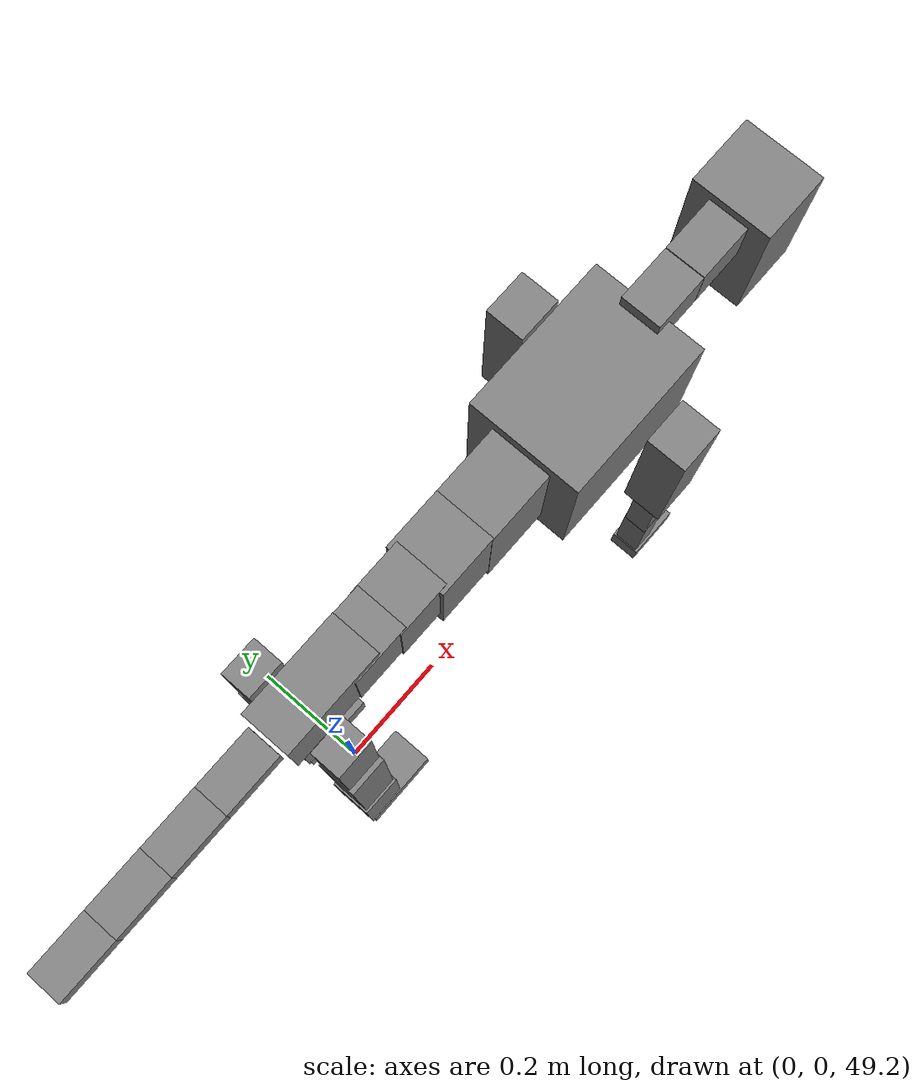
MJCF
<mujoco model="dog">

    <default>
        <joint armature="0.02" stiffness="1" damping="0.2" limited="true"/>
        <geom condim="3" friction="1 0.05 0.05" margin="0.01"/>
        <motor ctrllimited="true" ctrlrange="-1.0 1.0" forcelimited="true" gear="50"/>
    </default>

    <compiler inertiafromgeom="true" angle="radian"/>

    <option timestep="0.016" iterations="50" tolerance="1e-10" solver="Newton" jacobian="dense" cone="pyramidal"/>

    <size nconmax="20000" njmax="60000" nstack="5000000"/>
    <visual>
        <map force="0.1" zfar="30"/>
        <rgba haze="0.15 0.25 0.35 1"/>
        <quality shadowsize="2048"/>
        <global offwidth="800" offheight="800"/>
    </visual>

    <asset>
        <texture type="skybox" builtin="gradient" rgb1="0.3 0.5 0.7" rgb2="0 0 0" width="512" height="512"/>
        <texture name="texplane" type="2d" builtin="checker" rgb1=".2 .3 .4" rgb2=".1 0.15 0.2" width="512" height="512"
                 mark="cross" markrgb=".8 .8 .8"/>
        <texture name="texgeom" type="cube" builtin="flat" mark="cross" width="127" height="1278" rgb1="0.8 0.6 0.4"
                 rgb2="0.8 0.6 0.4" markrgb="1 1 1" random="0.01"/>

        <material name="matplane" reflectance="0.3" texture="texplane" texrepeat="1 1" texuniform="true"/>
        <material name="matgeom" texture="texgeom" texuniform="true" rgba="0.8 0.6 .4 1"/>
    </asset>

    <worldbody>
        <geom name="floor" pos="0 0 0" size="0 0 .25" type="plane" material="matplane" condim="3"/>

        <light directional="false" diffuse=".2 .2 .2" specular="0 0 0" pos="0 0 5" dir="0 0 -1" castshadow="false"/>
        <light mode="targetbodycom" target="torso" directional="false" diffuse=".8 .8 .8" specular="0.3 0.3 0.3"
               pos="0 0 4.0" dir="0 0 -1"/>

        <body name="root" pos="0 0 50">
            <freejoint name="root_1"/>
            <geom type="box" pos="0 0 -0.02" size="0.0774  0.0358  0.063" density="2030"/>

            <body name="spine1" pos="0.054 0 0">
                <joint name="spine1_y" axis="0 1 0" range="0 0.7" limited="true"/>
                <geom type="box" pos="0.02375 0 -0.03" size="0.04375  0.0375  0.05985" density="2030"/>

                <body name="spine2" pos="0.0612 0 0">
                    <joint name="spine2_y" axis="0 1 0" range="-0.15 0.15" limited="true"/>
                    <geom type="box" pos="0.03555  0  -0.04" size="0.04055  0.039  0.06615" density="2030"/>

                    <body name="spine3" pos="0.0730 0 0">
                        <joint name="spine3_y" axis="0 1 0" range="-0.15 0.15" limited="true"/>
                        <geom type="box" pos="0.03555  0  -0.057" size="0.04555  0.0445  0.081" density="2030"/>

                        <body name="spine4" pos="0.0780 0 0">
                            <joint name="spine4_y" axis="0 1 0" range="-0.15 0.15" limited="true"/>
                            <geom type="box" pos="0.05265  0  -0.07" size="0.05265  0.045  0.09135" density="2030"/>

                            <body name="torso" pos="0.1082 0 0">
                                <joint name="torso_y" axis="0 1 0" range="-0.15 0.15" limited="true"/>
                                <geom type="box" pos="0.11925  0  -0.085" size="0.11925  0.085  0.11745"
                                      density="2030"/>

                                <body name="neck1" pos="0.2160  0   0.0180">
                                    <joint name="neck1_y" axis="0 1 0" range="-1.2  -1" limited="true"/>
                                    <geom type="box" pos="0.0423  0  0" size="0.0423  0.03  0.036" density="2325"/>

                                    <body name="neck2" pos="0.0853  0  0">
                                        <joint name="neck2_y" axis="0 1 0" range="0.1  0" limited="true"/>
                                        <geom type="box" pos="0.0423  0  0" size="0.0423  0.03  0.036" density="2325"/>

                                        <body name="head" pos="0.0853  0  0">
                                            <joint name="head_y" axis="0 1 0" range="-0.3  -0.2" limited="true"/>
                                            <geom type="box" pos="0.0531  0  -0.055" size="0.0531  0.06  0.1044"
                                                  density="4030"/>

                                        </body>
                                    </body>
                                </body>

                                <body name="front_shoulder" pos="0.156  0   -0.0480">
                                    <joint name="front_shoulder_y" axis="0 1 0" range="-1 1.5" limited="true"/>
                                    <geom type="box" pos="0 0.13 -0.0915" size="0.0349  0.0298  0.1181" density="1158"/>
                                    <geom type="box" pos="0 -0.13 -0.0915" size="0.0349  0.0298  0.1181"
                                          density="1158"/>

                                    <body name="front_elbow" pos="0  0  -0.1829">
                                        <joint name="front_elbow_y" axis="0 1 0" range="-2 0" limited="true"/>
                                        <geom type="box" pos="0 0.13 -0.0913" size="0.0177  0.0181  0.0913"
                                              density="1081"/>
                                        <geom type="box" pos="0 -0.13 -0.0913" size="0.0177  0.0181  0.0913"
                                              density="1081"/>

                                        <body name="front_wrist" pos="0  0  -0.1826">
                                            <joint name="front_wrist_y" axis="0 1 0" range="-0.2 0" limited="true"/>
                                            <geom type="box" pos="0 0.13 -0.0642" size="0.0172  0.0191  0.0773"
                                                  density="1664"/>
                                            <geom type="box" pos="0 -0.13 -0.0642" size="0.0172  0.0191  0.0773"
                                                  density="1664"/>

                                            <body name="front_finger_end" pos="0  0  -0.1283">
                                                <joint name="front_finger_y" axis="0 1 0" range="-0.4 1"
                                                       limited="true"/>
                                                <geom type="box" pos="0.0229  0.13  -0.0047"
                                                      size="0.0420  0.0229  0.0197" density="1515"/>
                                                <geom type="box" pos="0.0229  -0.13  -0.0047"
                                                      size="0.0420  0.0229  0.0197" density="1515"/>

                                            </body>

                                        </body>
                                    </body>
                                </body>

                            </body>
                        </body>
                    </body>
                </body>
            </body>

            <body name="back_hip" pos="-0.03 0 -0.018">
                <joint name="back_hip_y" axis="0 1 0" range="-1.5 0.3" limited="true"/>
                <geom type="box" pos="0 0.07 -0.0927" size="0.0283  0.0222  0.1155" density="1154"/>
                <geom type="box" pos="0 -0.07 -0.0927" size="0.0283  0.0222  0.1155" density="1154"/>

                <body name="back_knee" pos="0  0  -0.1855">
                    <joint name="back_knee_y" axis="0 1 0" range="0 2.8" limited="true"/>
                    <geom type="box" pos="0 0.07 -0.1626" size="0.0298  0.0294  0.1782" density="1227"/>
                    <geom type="box" pos="0 -0.07 -0.1626" size="0.0298  0.0294  0.1782" density="1227"/>

                    <body name="back_ankle" pos="0  0  -0.3252">
                        <joint name="back_ankle_y" axis="0 1 0" range="-2.2 0" limited="true"/>
                        <geom type="box" pos="0 0.07 -0.0986" size="0.0332  0.0332  0.1098" density="1284"/>
                        <geom type="box" pos="0 -0.07 -0.0986" size="0.0332  0.0332  0.1098" density="1284"/>

                        <body name="back_toe_end" pos="0  0  -0.1971">
                            <joint name="back_toe_y" axis="0 1 0" range="-0.4 1" limited="true"/>
                            <geom type="box" pos="0.0350  0.07  -0.0125" size="0.0641  0.0350  0.0275" density="1515"/>
                            <geom type="box" pos="0.0350  -0.07  -0.0125" size="0.0641  0.0350  0.0275" density="1515"/>

                        </body>
                    </body>
                </body>
            </body>

            <body name="tail1" pos="-0.074 0 -0.006">
                <joint name="tail1_y" axis="0 1 0" range="-0.2 0.2" limited="true"/>
                <geom type="box" pos="-0.0536  0  0" size="0.045  0.025  0.0175" density="1587"/>

                <body name="tail2" pos="-0.09 0 0">
                    <joint name="tail2_y" axis="0 1 0" range="-0.2 0.2" limited="true"/>
                    <geom type="box" pos="-0.0536  0  0" size="0.045  0.025  0.0175" density="1587"/>

                    <body name="tail3" pos="-0.09 0 0">
                        <joint name="tail3_y" axis="0 1 0" range="-0.2 0.2" limited="true"/>
                        <geom type="box" pos="-0.0536  0  0" size="0.045  0.025  0.0175" density="1587"/>

                        <body name="tail4" pos="-0.09 0 0">
                            <joint name="tail4_y" axis="0 1 0" range="-0.2 0.2" limited="true"/>
                            <geom type="box" pos="-0.0536  0  0" size="0.045  0.025  0.0175" density="1587"/>

                        </body>
                    </body>
                </body>
            </body>
        </body>
    </worldbody>

    <actuator>
        <motor joint="spine1_y" forcerange="-150 150     "/>
        <motor joint="spine2_y" forcerange="-150 150     "/>
        <motor joint="spine3_y" forcerange="-150 150     "/>
        <motor joint="spine4_y" forcerange="-150 150     "/>
        <motor joint="torso_y" forcerange="-150 150     "/>
        <motor joint="neck1_y" forcerange="-100 100       "/>
        <motor joint="neck2_y" forcerange="-100 100       "/>
        <motor joint="head_y" forcerange="-150 150       "/>
        <motor joint="front_shoulder_y" forcerange="-110.33 188.48"/>
        <motor joint="front_elbow_y" forcerange="-103.52 128.36"/>
        <motor joint="front_wrist_y" forcerange="-92.53 60.32"/>
        <motor joint="front_finger_y" forcerange="-50.01 32.25"/>
        <motor joint="back_hip_y" forcerange="-200.27 296.10"/>
        <motor joint="back_knee_y" forcerange="-318.49 308.63"/>
        <motor joint="back_angle_y" forcerange="-236.76 195.22"/>
        <motor joint="back_toe_y" forcerange="-114.19 85.53"/>
        <motor joint="tail1_y" forcerange="-50 50     "/>
        <motor joint="tail2_y" forcerange="-50 50     "/>
        <motor joint="tail3_y" forcerange="-50 50     "/>
        <motor joint="tail4_y" forcerange="-50 50     "/>
    </actuator>
</mujoco>
